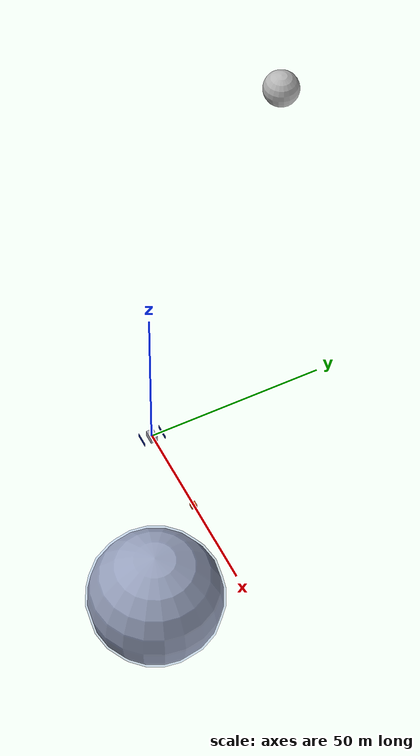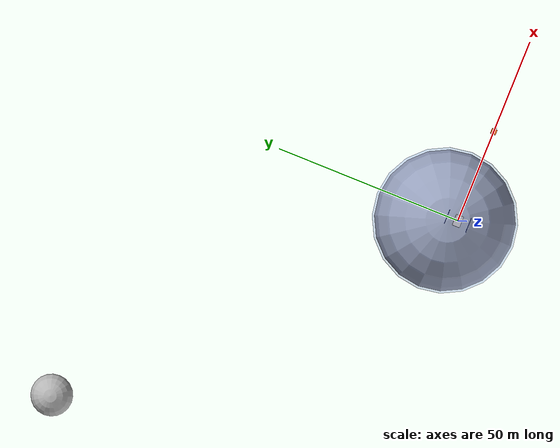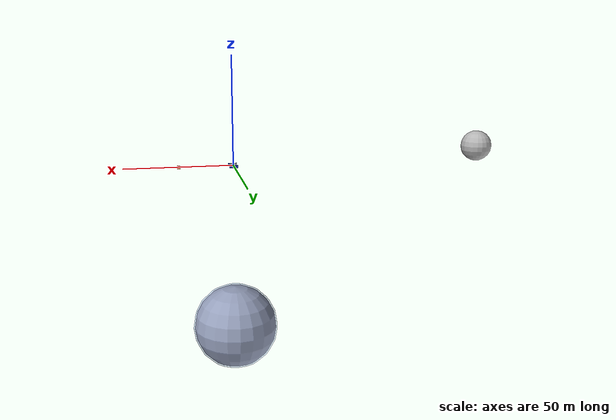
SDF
<?xml version="1.0" ?>
<sdf version="1.6">
  <world name="astro_orbit_world">
    <gravity>0 0 0</gravity>
    <physics name="default_physics" default="0" type="ode">
      <max_step_size>0.01</max_step_size>
      <real_time_update_rate>100</real_time_update_rate>
      <real_time_factor>1.0</real_time_factor>
    </physics>

    <scene>
      <ambient>0.025 0.025 0.045 1</ambient>
      <background>0.0 0.0 0.015 1</background>
      <shadows>true</shadows>
    </scene>

    <!-- Main directional light. Runtime control is handled by lighting_control.py. -->
    <light name="main_sun_light" type="directional">
      <pose>0 0 0 0 0 0</pose>
      <diffuse>1 1 1 1</diffuse>
      <specular>0.7 0.7 0.7 1</specular>
      <direction>-0.5 0.2 -0.8</direction>
      <cast_shadows>true</cast_shadows>
    </light>

    <!-- Static startup visuals. The ROS bridge will move these once MATLAB publishes state. -->
    <include>
      <uri>model://earth</uri>
      <pose>0 0 -80 0 0 0</pose>
    </include>
    <include>
      <uri>model://moon</uri>
      <pose>-80 80 20 0 0 0</pose>
    </include>
    <include>
      <uri>model://sun_visual</uri>
      <pose>120 -40 60 0 0 0</pose>
    </include>
    <include>
      <uri>model://target</uri>
      <pose>0 0 0 0 0 0</pose>
    </include>
    <include>
      <uri>model://chaser</uri>
      <pose>25 0 0 0 0 0</pose>
    </include>
  </world>
</sdf>

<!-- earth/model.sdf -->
<sdf version="1.6">
  <model name="earth">
    <static>true</static>
    <link name="earth_link">
      <visual name="earth_day_visual">
        <geometry><sphere><radius>20.0</radius></sphere></geometry>
        <material><script><uri>model://earth/materials/scripts</uri><uri>model://earth/materials/textures</uri><name>ASTRO/EarthDay</name></script></material>
      </visual>
      <visual name="cloud_layer_visual">
        <geometry><sphere><radius>20.25</radius></sphere></geometry>
        <transparency>0.55</transparency>
        <material><script><uri>model://earth/materials/scripts</uri><uri>model://earth/materials/textures</uri><name>ASTRO/EarthClouds</name></script></material>
      </visual>
      <visual name="atmosphere_shell">
        <geometry><sphere><radius>20.65</radius></sphere></geometry>
        <transparency>0.82</transparency>
        <material><ambient>0.15 0.35 0.9 0.25</ambient><diffuse>0.15 0.35 0.9 0.20</diffuse></material>
      </visual>
    </link>
  </model>
</sdf>

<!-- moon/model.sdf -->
<sdf version="1.6">
  <model name="moon">
    <static>true</static>
    <link name="moon_link">
      <visual name="moon_visual">
        <geometry><sphere><radius>5.4</radius></sphere></geometry>
        <material><script><uri>model://moon/materials/scripts</uri><uri>model://moon/materials/textures</uri><name>ASTRO/Moon</name></script></material>
      </visual>
    </link>
  </model>
</sdf>

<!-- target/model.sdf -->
<sdf version="1.6">
  <model name="target">
    <static>false</static>
    <link name="body">
      <inertial><mass>1</mass><inertia><ixx>1</ixx><iyy>1</iyy><izz>1</izz></inertia></inertial>
      <visual name="bus"><geometry><box><size>3 2 2</size></box></geometry><material><ambient>0.7 0.7 0.75 1</ambient><diffuse>0.7 0.7 0.75 1</diffuse></material></visual>
      <visual name="panel_left"><pose>0 3 0 0 0 0</pose><geometry><box><size>4 0.08 1.2</size></box></geometry><material><ambient>0.02 0.05 0.20 1</ambient><diffuse>0.05 0.15 0.65 1</diffuse></material></visual>
      <visual name="panel_right"><pose>0 -3 0 0 0 0</pose><geometry><box><size>4 0.08 1.2</size></box></geometry><material><ambient>0.02 0.05 0.20 1</ambient><diffuse>0.05 0.15 0.65 1</diffuse></material></visual>
    </link>
  </model>
</sdf>

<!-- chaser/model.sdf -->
<sdf version="1.6">
  <model name="chaser">
    <static>false</static>
    <link name="body">
      <inertial><mass>1</mass><inertia><ixx>1</ixx><iyy>1</iyy><izz>1</izz></inertia></inertial>
      <visual name="bus"><geometry><box><size>1.4 1.4 1.4</size></box></geometry><material><ambient>0.8 0.25 0.05 1</ambient><diffuse>0.9 0.35 0.08 1</diffuse></material></visual>
      <visual name="nose"><pose>0.95 0 0 0 1.5708 0</pose><geometry><cylinder><radius>0.35</radius><length>0.5</length></cylinder></geometry><material><ambient>0.95 0.95 0.95 1</ambient><diffuse>0.95 0.95 0.95 1</diffuse></material></visual>
    </link>
  </model>
</sdf>
